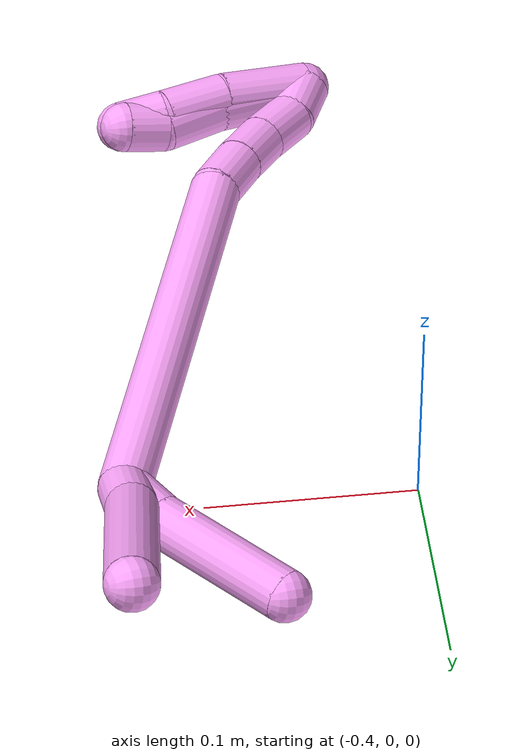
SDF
<sdf version="1.7">
 <world name="default">
  <model name="photoneo_s_sensor">
   <static>1</static>
   <pose>0 0 2 1.57079 1.57079 3.14159</pose>
   <link name="link">
    <inertial><mass>0.1</mass></inertial>
    <sensor name="sensor" type="depth">
     <update_rate>30</update_rate>
     <camera>
      <horizontal_fov>1.22</horizontal_fov>
      <image><width>1920</width><height>1200</height><format>B8G8R8</format></image>
      <clip><near>0.1</near><far>4</far></clip>
      <depth_camera><output>points</output></depth_camera>
     </camera>
     <plugin name="camera_plugin" filename="libgazebo_ros_depth_camera.so">
      <baseline>0.2</baseline>
      <alwaysOn>1</alwaysOn>
      <updateRate>0.0</updateRate>
      <cameraName>camera_ir</cameraName>
      <imageTopicName>/camera/color/image_raw</imageTopicName>
      <cameraInfoTopicName>/camera/color/camera_info</cameraInfoTopicName>
      <depthImageTopicName>/camera/depth/image_raw</depthImageTopicName>
      <depthImageCameraInfoTopicName>/camera/depth/camera_info</depthImageCameraInfoTopicName>
      <pointCloudTopicName>/camera/depth/points</pointCloudTopicName>
      <frameName>fr_optical</frameName>
      <pointCloudCutoff>0.1</pointCloudCutoff>
      <pointCloudCutoffMax>2.0</pointCloudCutoffMax>
      <distortionK1>0</distortionK1>
      <distortionK2>0</distortionK2>
      <distortionK3>0</distortionK3>
      <distortionT1>0</distortionT1>
      <distortionT2>0</distortionT2>
      <CxPrime>0</CxPrime>
      <Cx>0</Cx>
      <Cy>0</Cy>
      <focalLength>0</focalLength>
      <hackBaseline>0</hackBaseline>
     </plugin>
    </sensor>
   </link>
  </model>
  <model name="bin">
   <static>1</static>
   <link name="bottom">
    <collision name="collision-bottom">
     <pose>0 0 -0.01 0 -0 0</pose>
     <geometry><box><size>0.8 0.6 0.02</size></box></geometry>
     <surface>
      <friction><ode><mu>100</mu><mu2>100</mu2></ode></friction>
      <contact><collide_bitmask>65535</collide_bitmask></contact>
     </surface>
    </collision>
   </link>
   <link name="west_wall">
    <collision name="collision-west_wall">
     <pose>-0.41 0 0.1 0 -0 0</pose>
     <geometry><box><size>0.02 0.6 0.2</size></box></geometry>
     <surface>
      <friction><ode><mu>100</mu><mu2>100</mu2></ode></friction>
      <contact><collide_bitmask>65535</collide_bitmask></contact>
     </surface>
    </collision>
   </link>
   <link name="east_wall">
    <collision name="collision-east_wall">
     <pose>0.41 0 0.1 0 -0 0</pose>
     <geometry><box><size>0.02 0.6 0.2</size></box></geometry>
     <surface>
      <friction><ode><mu>100</mu><mu2>100</mu2></ode></friction>
      <contact><collide_bitmask>65535</collide_bitmask></contact>
     </surface>
    </collision>
   </link>
   <link name="south_wall">
    <collision name="collision-south_wall">
     <pose>0 -0.31 0.1 0 -0 0</pose>
     <geometry><box><size>0.8 0.02 0.2</size></box></geometry>
     <surface>
      <friction><ode><mu>100</mu><mu2>100</mu2></ode></friction>
      <contact><collide_bitmask>65535</collide_bitmask></contact>
     </surface>
    </collision>
   </link>
   <link name="north_wall">
    <collision name="collision-north_wall">
     <pose>0 0.31 0.1 0 -0 0</pose>
     <geometry><box><size>0.8 0.02 0.2</size></box></geometry>
     <surface>
      <friction><ode><mu>100</mu><mu2>100</mu2></ode></friction>
      <contact><collide_bitmask>65535</collide_bitmask></contact>
     </surface>
    </collision>
   </link>
  </model>
  <model name="4">
   <static>0</static>
   <link name="4">
    <collision name="collision-cylinder-e_1_2_8">
     <pose>-0.006712 0.010462 -0.003642 -1.90583 -0.544734 0.748907</pose>
     <geometry><cylinder><radius>0.0125</radius><length>0.025905</length></cylinder></geometry>
     <surface>
      <friction><ode><mu>1.16</mu><mu2>1.16</mu2><slip1>0</slip1><slip2>0</slip2></ode></friction>
      <contact><ode><kp>1e+06</kp><kd>1</kd><max_vel>0</max_vel><min_depth>0.001</min_depth></ode></contact>
     </surface>
    </collision>
    <visual name="visual-cylinder-e_1_2_8">
     <pose>-0.006712 0.010462 -0.003642 -1.90583 -0.544734 0.748907</pose>
     <geometry><cylinder><radius>0.0125</radius><length>0.025905</length></cylinder></geometry>
     <material><ambient>1 0.65098 0.996078 1</ambient></material>
    </visual>
    <collision name="collision-cylinder-e_2_8_6">
     <pose>-0.038045 0.072086 -0.032307 -2.02567 -0.408042 0.640217</pose>
     <geometry><cylinder><radius>0.0125</radius><length>0.124095</length></cylinder></geometry>
     <surface>
      <friction><ode><mu>1.16</mu><mu2>1.16</mu2><slip1>0</slip1><slip2>0</slip2></ode></friction>
      <contact><ode><kp>1e+06</kp><kd>1</kd><max_vel>0</max_vel><min_depth>0.001</min_depth></ode></contact>
     </surface>
    </collision>
    <visual name="visual-cylinder-e_2_8_6">
     <pose>-0.038045 0.072086 -0.032307 -2.02567 -0.408042 0.640217</pose>
     <geometry><cylinder><radius>0.0125</radius><length>0.124095</length></cylinder></geometry>
     <material><ambient>1 0.65098 0.996078 1</ambient></material>
    </visual>
    <collision name="collision-cylinder-e_1_2_9">
     <pose>-0.009929 0.008237 0.003689 -1.14972 -0.833041 0.558254</pose>
     <geometry><cylinder><radius>0.0125</radius><length>0.026837</length></cylinder></geometry>
     <surface>
      <friction><ode><mu>1.16</mu><mu2>1.16</mu2><slip1>0</slip1><slip2>0</slip2></ode></friction>
      <contact><ode><kp>1e+06</kp><kd>1</kd><max_vel>0</max_vel><min_depth>0.001</min_depth></ode></contact>
     </surface>
    </collision>
    <visual name="visual-cylinder-e_1_2_9">
     <pose>-0.009929 0.008237 0.003689 -1.14972 -0.833041 0.558254</pose>
     <geometry><cylinder><radius>0.0125</radius><length>0.026837</length></cylinder></geometry>
     <material><ambient>1 0.65098 0.996078 1</ambient></material>
    </visual>
    <collision name="collision-cylinder-e_2_9_5">
     <pose>-0.044416 0.037801 0.024121 -0.905231 -0.735977 0.370672</pose>
     <geometry><cylinder><radius>0.0125</radius><length>0.073163</length></cylinder></geometry>
     <surface>
      <friction><ode><mu>1.16</mu><mu2>1.16</mu2><slip1>0</slip1><slip2>0</slip2></ode></friction>
      <contact><ode><kp>1e+06</kp><kd>1</kd><max_vel>0</max_vel><min_depth>0.001</min_depth></ode></contact>
     </surface>
    </collision>
    <visual name="visual-cylinder-e_2_9_5">
     <pose>-0.044416 0.037801 0.024121 -0.905231 -0.735977 0.370672</pose>
     <geometry><cylinder><radius>0.0125</radius><length>0.073163</length></cylinder></geometry>
     <material><ambient>1 0.65098 0.996078 1</ambient></material>
    </visual>
    <collision name="collision-cylinder-e_1_2_10">
     <pose>0.076639 -0.03406 0.054426 0.559185 0.873457 0.266456</pose>
     <geometry><cylinder><radius>0.0125</radius><length>0.199959</length></cylinder></geometry>
     <surface>
      <friction><ode><mu>1.16</mu><mu2>1.16</mu2><slip1>0</slip1><slip2>0</slip2></ode></friction>
      <contact><ode><kp>1e+06</kp><kd>1</kd><max_vel>0</max_vel><min_depth>0.001</min_depth></ode></contact>
     </surface>
    </collision>
    <visual name="visual-cylinder-e_1_2_10">
     <pose>0.076639 -0.03406 0.054426 0.559185 0.873457 0.266456</pose>
     <geometry><cylinder><radius>0.0125</radius><length>0.199959</length></cylinder></geometry>
     <material><ambient>1 0.65098 0.996078 1</ambient></material>
    </visual>
    <collision name="collision-cylinder-e_2_10_11">
     <pose>0.16074 -0.072859 0.118776 0.44546 0.596051 0.138918</pose>
     <geometry><cylinder><radius>0.0125</radius><length>0.02658</length></cylinder></geometry>
     <surface>
      <friction><ode><mu>1.16</mu><mu2>1.16</mu2><slip1>0</slip1><slip2>0</slip2></ode></friction>
      <contact><ode><kp>1e+06</kp><kd>1</kd><max_vel>0</max_vel><min_depth>0.001</min_depth></ode></contact>
     </surface>
    </collision>
    <visual name="visual-cylinder-e_2_10_11">
     <pose>0.16074 -0.072859 0.118776 0.44546 0.596051 0.138918</pose>
     <geometry><cylinder><radius>0.0125</radius><length>0.02658</length></cylinder></geometry>
     <material><ambient>1 0.65098 0.996078 1</ambient></material>
    </visual>
    <collision name="collision-cylinder-e_3_11_12">
     <pose>0.174657 -0.082054 0.138503 0.426591 0.540164 0.119781</pose>
     <geometry><cylinder><radius>0.0125</radius><length>0.02511</length></cylinder></geometry>
     <surface>
      <friction><ode><mu>1.16</mu><mu2>1.16</mu2><slip1>0</slip1><slip2>0</slip2></ode></friction>
      <contact><ode><kp>1e+06</kp><kd>1</kd><max_vel>0</max_vel><min_depth>0.001</min_depth></ode></contact>
     </surface>
    </collision>
    <visual name="visual-cylinder-e_3_11_12">
     <pose>0.174657 -0.082054 0.138503 0.426591 0.540164 0.119781</pose>
     <geometry><cylinder><radius>0.0125</radius><length>0.02511</length></cylinder></geometry>
     <material><ambient>1 0.65098 0.996078 1</ambient></material>
    </visual>
    <collision name="collision-cylinder-e_4_12_13">
     <pose>0.187192 -0.08996 0.159304 0.304062 0.485297 0.075812</pose>
     <geometry><cylinder><radius>0.0125</radius><length>0.026061</length></cylinder></geometry>
     <surface>
      <friction><ode><mu>1.16</mu><mu2>1.16</mu2><slip1>0</slip1><slip2>0</slip2></ode></friction>
      <contact><ode><kp>1e+06</kp><kd>1</kd><max_vel>0</max_vel><min_depth>0.001</min_depth></ode></contact>
     </surface>
    </collision>
    <visual name="visual-cylinder-e_4_12_13">
     <pose>0.187192 -0.08996 0.159304 0.304062 0.485297 0.075812</pose>
     <geometry><cylinder><radius>0.0125</radius><length>0.026061</length></cylinder></geometry>
     <material><ambient>1 0.65098 0.996078 1</ambient></material>
    </visual>
    <collision name="collision-cylinder-e_5_13_1">
     <pose>0.201418 -0.096366 0.177309 0.399036 0.819757 0.175264</pose>
     <geometry><cylinder><radius>0.0125</radius><length>0.02229</length></cylinder></geometry>
     <surface>
      <friction><ode><mu>1.16</mu><mu2>1.16</mu2><slip1>0</slip1><slip2>0</slip2></ode></friction>
      <contact><ode><kp>1e+06</kp><kd>1</kd><max_vel>0</max_vel><min_depth>0.001</min_depth></ode></contact>
     </surface>
    </collision>
    <visual name="visual-cylinder-e_5_13_1">
     <pose>0.201418 -0.096366 0.177309 0.399036 0.819757 0.175264</pose>
     <geometry><cylinder><radius>0.0125</radius><length>0.02229</length></cylinder></geometry>
     <material><ambient>1 0.65098 0.996078 1</ambient></material>
    </visual>
    <collision name="collision-cylinder-e_1_1_14">
     <pose>0.209336 -0.100949 0.161876 3.06915 -0.010137 -0.277954</pose>
     <geometry><cylinder><radius>0.0125</radius><length>0.045002</length></cylinder></geometry>
     <surface>
      <friction><ode><mu>1.16</mu><mu2>1.16</mu2><slip1>0</slip1><slip2>0</slip2></ode></friction>
      <contact><ode><kp>1e+06</kp><kd>1</kd><max_vel>0</max_vel><min_depth>0.001</min_depth></ode></contact>
     </surface>
    </collision>
    <visual name="visual-cylinder-e_1_1_14">
     <pose>0.209336 -0.100949 0.161876 3.06915 -0.010137 -0.277954</pose>
     <geometry><cylinder><radius>0.0125</radius><length>0.045002</length></cylinder></geometry>
     <material><ambient>1 0.65098 0.996078 1</ambient></material>
    </visual>
    <collision name="collision-cylinder-e_2_14_15">
     <pose>0.206671 -0.104176 0.123573 3.04113 -0.151681 -1.97255</pose>
     <geometry><cylinder><radius>0.0125</radius><length>0.032254</length></cylinder></geometry>
     <surface>
      <friction><ode><mu>1.16</mu><mu2>1.16</mu2><slip1>0</slip1><slip2>0</slip2></ode></friction>
      <contact><ode><kp>1e+06</kp><kd>1</kd><max_vel>0</max_vel><min_depth>0.001</min_depth></ode></contact>
     </surface>
    </collision>
    <visual name="visual-cylinder-e_2_14_15">
     <pose>0.206671 -0.104176 0.123573 3.04113 -0.151681 -1.97255</pose>
     <geometry><cylinder><radius>0.0125</radius><length>0.032254</length></cylinder></geometry>
     <material><ambient>1 0.65098 0.996078 1</ambient></material>
    </visual>
    <collision name="collision-cylinder-e_3_15_4">
     <pose>0.203196 -0.109171 0.096909 2.83703 -0.091462 -0.579589</pose>
     <geometry><cylinder><radius>0.0125</radius><length>0.022744</length></cylinder></geometry>
     <surface>
      <friction><ode><mu>1.16</mu><mu2>1.16</mu2><slip1>0</slip1><slip2>0</slip2></ode></friction>
      <contact><ode><kp>1e+06</kp><kd>1</kd><max_vel>0</max_vel><min_depth>0.001</min_depth></ode></contact>
     </surface>
    </collision>
    <visual name="visual-cylinder-e_3_15_4">
     <pose>0.203196 -0.109171 0.096909 2.83703 -0.091462 -0.579589</pose>
     <geometry><cylinder><radius>0.0125</radius><length>0.022744</length></cylinder></geometry>
     <material><ambient>1 0.65098 0.996078 1</ambient></material>
    </visual>
    <collision name="collision-cylinder-e_1_1_16">
     <pose>0.207421 -0.101957 0.160334 3.03209 -0.088617 -1.36039</pose>
     <geometry><cylinder><radius>0.0125</radius><length>0.048445</length></cylinder></geometry>
     <surface>
      <friction><ode><mu>1.16</mu><mu2>1.16</mu2><slip1>0</slip1><slip2>0</slip2></ode></friction>
      <contact><ode><kp>1e+06</kp><kd>1</kd><max_vel>0</max_vel><min_depth>0.001</min_depth></ode></contact>
     </surface>
    </collision>
    <visual name="visual-cylinder-e_1_1_16">
     <pose>0.207421 -0.101957 0.160334 3.03209 -0.088617 -1.36039</pose>
     <geometry><cylinder><radius>0.0125</radius><length>0.048445</length></cylinder></geometry>
     <material><ambient>1 0.65098 0.996078 1</ambient></material>
    </visual>
    <collision name="collision-cylinder-e_2_16_17">
     <pose>0.201831 -0.10566 0.121155 3.07157 -0.222444 -2.53378</pose>
     <geometry><cylinder><radius>0.0125</radius><length>0.031237</length></cylinder></geometry>
     <surface>
      <friction><ode><mu>1.16</mu><mu2>1.16</mu2><slip1>0</slip1><slip2>0</slip2></ode></friction>
      <contact><ode><kp>1e+06</kp><kd>1</kd><max_vel>0</max_vel><min_depth>0.001</min_depth></ode></contact>
     </surface>
    </collision>
    <visual name="visual-cylinder-e_2_16_17">
     <pose>0.201831 -0.10566 0.121155 3.07157 -0.222444 -2.53378</pose>
     <geometry><cylinder><radius>0.0125</radius><length>0.031237</length></cylinder></geometry>
     <material><ambient>1 0.65098 0.996078 1</ambient></material>
    </visual>
    <collision name="collision-cylinder-e_3_17_3">
     <pose>0.199469 -0.107388 0.095879 3.07593 0.106823 2.03986</pose>
     <geometry><cylinder><radius>0.0125</radius><length>0.020318</length></cylinder></geometry>
     <surface>
      <friction><ode><mu>1.16</mu><mu2>1.16</mu2><slip1>0</slip1><slip2>0</slip2></ode></friction>
      <contact><ode><kp>1e+06</kp><kd>1</kd><max_vel>0</max_vel><min_depth>0.001</min_depth></ode></contact>
     </surface>
    </collision>
    <visual name="visual-cylinder-e_3_17_3">
     <pose>0.199469 -0.107388 0.095879 3.07593 0.106823 2.03986</pose>
     <geometry><cylinder><radius>0.0125</radius><length>0.020318</length></cylinder></geometry>
     <material><ambient>1 0.65098 0.996078 1</ambient></material>
    </visual>
    <collision name="collision-sphere-3">
     <pose>0.200552 -0.108051 0.085799 0 -0 0</pose>
     <geometry><sphere><radius>0.0125</radius></sphere></geometry>
     <surface>
      <friction><ode><mu>1.16</mu><mu2>1.16</mu2><slip1>0</slip1><slip2>0</slip2></ode></friction>
      <contact><ode><kp>1e+06</kp><kd>1</kd><max_vel>0</max_vel><min_depth>0.001</min_depth></ode></contact>
     </surface>
    </collision>
    <visual name="visual-sphere-3">
     <pose>0.200552 -0.108051 0.085799 0 -0 0</pose>
     <geometry><sphere><radius>0.0125</radius></sphere></geometry>
     <material><ambient>1 0.65098 0.996078 1</ambient></material>
    </visual>
    <collision name="collision-sphere-17">
     <pose>0.198386 -0.106726 0.105958 0 -0 0</pose>
     <geometry><sphere><radius>0.0125</radius></sphere></geometry>
     <surface>
      <friction><ode><mu>1.16</mu><mu2>1.16</mu2><slip1>0</slip1><slip2>0</slip2></ode></friction>
      <contact><ode><kp>1e+06</kp><kd>1</kd><max_vel>0</max_vel><min_depth>0.001</min_depth></ode></contact>
     </surface>
    </collision>
    <visual name="visual-sphere-17">
     <pose>0.198386 -0.106726 0.105958 0 -0 0</pose>
     <geometry><sphere><radius>0.0125</radius></sphere></geometry>
     <material><ambient>1 0.65098 0.996078 1</ambient></material>
    </visual>
    <collision name="collision-sphere-16">
     <pose>0.205277 -0.104594 0.136351 0 -0 0</pose>
     <geometry><sphere><radius>0.0125</radius></sphere></geometry>
     <surface>
      <friction><ode><mu>1.16</mu><mu2>1.16</mu2><slip1>0</slip1><slip2>0</slip2></ode></friction>
      <contact><ode><kp>1e+06</kp><kd>1</kd><max_vel>0</max_vel><min_depth>0.001</min_depth></ode></contact>
     </surface>
    </collision>
    <visual name="visual-sphere-16">
     <pose>0.205277 -0.104594 0.136351 0 -0 0</pose>
     <geometry><sphere><radius>0.0125</radius></sphere></geometry>
     <material><ambient>1 0.65098 0.996078 1</ambient></material>
    </visual>
    <collision name="collision-sphere-4">
     <pose>0.202157 -0.112567 0.086105 0 -0 0</pose>
     <geometry><sphere><radius>0.0125</radius></sphere></geometry>
     <surface>
      <friction><ode><mu>1.16</mu><mu2>1.16</mu2><slip1>0</slip1><slip2>0</slip2></ode></friction>
      <contact><ode><kp>1e+06</kp><kd>1</kd><max_vel>0</max_vel><min_depth>0.001</min_depth></ode></contact>
     </surface>
    </collision>
    <visual name="visual-sphere-4">
     <pose>0.202157 -0.112567 0.086105 0 -0 0</pose>
     <geometry><sphere><radius>0.0125</radius></sphere></geometry>
     <material><ambient>1 0.65098 0.996078 1</ambient></material>
    </visual>
    <collision name="collision-sphere-15">
     <pose>0.204235 -0.105775 0.107712 0 -0 0</pose>
     <geometry><sphere><radius>0.0125</radius></sphere></geometry>
     <surface>
      <friction><ode><mu>1.16</mu><mu2>1.16</mu2><slip1>0</slip1><slip2>0</slip2></ode></friction>
      <contact><ode><kp>1e+06</kp><kd>1</kd><max_vel>0</max_vel><min_depth>0.001</min_depth></ode></contact>
     </surface>
    </collision>
    <visual name="visual-sphere-15">
     <pose>0.204235 -0.105775 0.107712 0 -0 0</pose>
     <geometry><sphere><radius>0.0125</radius></sphere></geometry>
     <material><ambient>1 0.65098 0.996078 1</ambient></material>
    </visual>
    <collision name="collision-sphere-14">
     <pose>0.209108 -0.102577 0.139434 0 -0 0</pose>
     <geometry><sphere><radius>0.0125</radius></sphere></geometry>
     <surface>
      <friction><ode><mu>1.16</mu><mu2>1.16</mu2><slip1>0</slip1><slip2>0</slip2></ode></friction>
      <contact><ode><kp>1e+06</kp><kd>1</kd><max_vel>0</max_vel><min_depth>0.001</min_depth></ode></contact>
     </surface>
    </collision>
    <visual name="visual-sphere-14">
     <pose>0.209108 -0.102577 0.139434 0 -0 0</pose>
     <geometry><sphere><radius>0.0125</radius></sphere></geometry>
     <material><ambient>1 0.65098 0.996078 1</ambient></material>
    </visual>
    <collision name="collision-sphere-1">
     <pose>0.209564 -0.09932 0.184317 0 -0 0</pose>
     <geometry><sphere><radius>0.0125</radius></sphere></geometry>
     <surface>
      <friction><ode><mu>1.16</mu><mu2>1.16</mu2><slip1>0</slip1><slip2>0</slip2></ode></friction>
      <contact><ode><kp>1e+06</kp><kd>1</kd><max_vel>0</max_vel><min_depth>0.001</min_depth></ode></contact>
     </surface>
    </collision>
    <visual name="visual-sphere-1">
     <pose>0.209564 -0.09932 0.184317 0 -0 0</pose>
     <geometry><sphere><radius>0.0125</radius></sphere></geometry>
     <material><ambient>1 0.65098 0.996078 1</ambient></material>
    </visual>
    <collision name="collision-sphere-13">
     <pose>0.193271 -0.093411 0.170301 0 -0 0</pose>
     <geometry><sphere><radius>0.0125</radius></sphere></geometry>
     <surface>
      <friction><ode><mu>1.16</mu><mu2>1.16</mu2><slip1>0</slip1><slip2>0</slip2></ode></friction>
      <contact><ode><kp>1e+06</kp><kd>1</kd><max_vel>0</max_vel><min_depth>0.001</min_depth></ode></contact>
     </surface>
    </collision>
    <visual name="visual-sphere-13">
     <pose>0.193271 -0.093411 0.170301 0 -0 0</pose>
     <geometry><sphere><radius>0.0125</radius></sphere></geometry>
     <material><ambient>1 0.65098 0.996078 1</ambient></material>
    </visual>
    <collision name="collision-sphere-12">
     <pose>0.181114 -0.086509 0.148306 0 -0 0</pose>
     <geometry><sphere><radius>0.0125</radius></sphere></geometry>
     <surface>
      <friction><ode><mu>1.16</mu><mu2>1.16</mu2><slip1>0</slip1><slip2>0</slip2></ode></friction>
      <contact><ode><kp>1e+06</kp><kd>1</kd><max_vel>0</max_vel><min_depth>0.001</min_depth></ode></contact>
     </surface>
    </collision>
    <visual name="visual-sphere-12">
     <pose>0.181114 -0.086509 0.148306 0 -0 0</pose>
     <geometry><sphere><radius>0.0125</radius></sphere></geometry>
     <material><ambient>1 0.65098 0.996078 1</ambient></material>
    </visual>
    <collision name="collision-sphere-11">
     <pose>0.1682 -0.077598 0.128701 0 -0 0</pose>
     <geometry><sphere><radius>0.0125</radius></sphere></geometry>
     <surface>
      <friction><ode><mu>1.16</mu><mu2>1.16</mu2><slip1>0</slip1><slip2>0</slip2></ode></friction>
      <contact><ode><kp>1e+06</kp><kd>1</kd><max_vel>0</max_vel><min_depth>0.001</min_depth></ode></contact>
     </surface>
    </collision>
    <visual name="visual-sphere-11">
     <pose>0.1682 -0.077598 0.128701 0 -0 0</pose>
     <geometry><sphere><radius>0.0125</radius></sphere></geometry>
     <material><ambient>1 0.65098 0.996078 1</ambient></material>
    </visual>
    <collision name="collision-sphere-8">
     <pose>-0.013424 0.020924 -0.007285 0 -0 0</pose>
     <geometry><sphere><radius>0.0125</radius></sphere></geometry>
     <surface>
      <friction><ode><mu>1.16</mu><mu2>1.16</mu2><slip1>0</slip1><slip2>0</slip2></ode></friction>
      <contact><ode><kp>1e+06</kp><kd>1</kd><max_vel>0</max_vel><min_depth>0.001</min_depth></ode></contact>
     </surface>
    </collision>
    <visual name="visual-sphere-8">
     <pose>-0.013424 0.020924 -0.007285 0 -0 0</pose>
     <geometry><sphere><radius>0.0125</radius></sphere></geometry>
     <material><ambient>1 0.65098 0.996078 1</ambient></material>
    </visual>
    <collision name="collision-sphere-2">
     <geometry><sphere><radius>0.0125</radius></sphere></geometry>
     <surface>
      <friction><ode><mu>1.16</mu><mu2>1.16</mu2><slip1>0</slip1><slip2>0</slip2></ode></friction>
      <contact><ode><kp>1e+06</kp><kd>1</kd><max_vel>0</max_vel><min_depth>0.001</min_depth></ode></contact>
     </surface>
    </collision>
    <visual name="visual-sphere-2">
     <geometry><sphere><radius>0.0125</radius></sphere></geometry>
     <material><ambient>1 0.65098 0.996078 1</ambient></material>
    </visual>
    <collision name="collision-sphere-9">
     <pose>-0.019858 0.016474 0.007378 0 -0 0</pose>
     <geometry><sphere><radius>0.0125</radius></sphere></geometry>
     <surface>
      <friction><ode><mu>1.16</mu><mu2>1.16</mu2><slip1>0</slip1><slip2>0</slip2></ode></friction>
      <contact><ode><kp>1e+06</kp><kd>1</kd><max_vel>0</max_vel><min_depth>0.001</min_depth></ode></contact>
     </surface>
    </collision>
    <visual name="visual-sphere-9">
     <pose>-0.019858 0.016474 0.007378 0 -0 0</pose>
     <geometry><sphere><radius>0.0125</radius></sphere></geometry>
     <material><ambient>1 0.65098 0.996078 1</ambient></material>
    </visual>
    <collision name="collision-sphere-6">
     <pose>-0.062666 0.123248 -0.057329 0 -0 0</pose>
     <geometry><sphere><radius>0.0125</radius></sphere></geometry>
     <surface>
      <friction><ode><mu>1.16</mu><mu2>1.16</mu2><slip1>0</slip1><slip2>0</slip2></ode></friction>
      <contact><ode><kp>1e+06</kp><kd>1</kd><max_vel>0</max_vel><min_depth>0.001</min_depth></ode></contact>
     </surface>
    </collision>
    <visual name="visual-sphere-6">
     <pose>-0.062666 0.123248 -0.057329 0 -0 0</pose>
     <geometry><sphere><radius>0.0125</radius></sphere></geometry>
     <material><ambient>1 0.65098 0.996078 1</ambient></material>
    </visual>
    <collision name="collision-sphere-5">
     <pose>-0.068974 0.059127 0.040864 0 -0 0</pose>
     <geometry><sphere><radius>0.0125</radius></sphere></geometry>
     <surface>
      <friction><ode><mu>1.16</mu><mu2>1.16</mu2><slip1>0</slip1><slip2>0</slip2></ode></friction>
      <contact><ode><kp>1e+06</kp><kd>1</kd><max_vel>0</max_vel><min_depth>0.001</min_depth></ode></contact>
     </surface>
    </collision>
    <visual name="visual-sphere-5">
     <pose>-0.068974 0.059127 0.040864 0 -0 0</pose>
     <geometry><sphere><radius>0.0125</radius></sphere></geometry>
     <material><ambient>1 0.65098 0.996078 1</ambient></material>
    </visual>
    <collision name="collision-sphere-10">
     <pose>0.153279 -0.068121 0.108851 0 -0 0</pose>
     <geometry><sphere><radius>0.0125</radius></sphere></geometry>
     <surface>
      <friction><ode><mu>1.16</mu><mu2>1.16</mu2><slip1>0</slip1><slip2>0</slip2></ode></friction>
      <contact><ode><kp>1e+06</kp><kd>1</kd><max_vel>0</max_vel><min_depth>0.001</min_depth></ode></contact>
     </surface>
    </collision>
    <visual name="visual-sphere-10">
     <pose>0.153279 -0.068121 0.108851 0 -0 0</pose>
     <geometry><sphere><radius>0.0125</radius></sphere></geometry>
     <material><ambient>1 0.65098 0.996078 1</ambient></material>
    </visual>
    <inertial>
     <pose>0.088072 -0.031873 0.067142 0 -0 0</pose>
     <mass>0.75</mass>
     <inertia>
      <ixx>0.000784</ixx>
      <ixy>0</ixy>
      <ixz>0</ixz>
      <iyy>0.000834</iyy>
      <iyz>0</iyz>
      <izz>-0.000353</izz>
     </inertia>
    </inertial>
   </link>
   <pose>-0.263911 -0.006145 0.011493 1.81925 -0.600717 -1.43149</pose>
  </model>
 </world>
</sdf>
